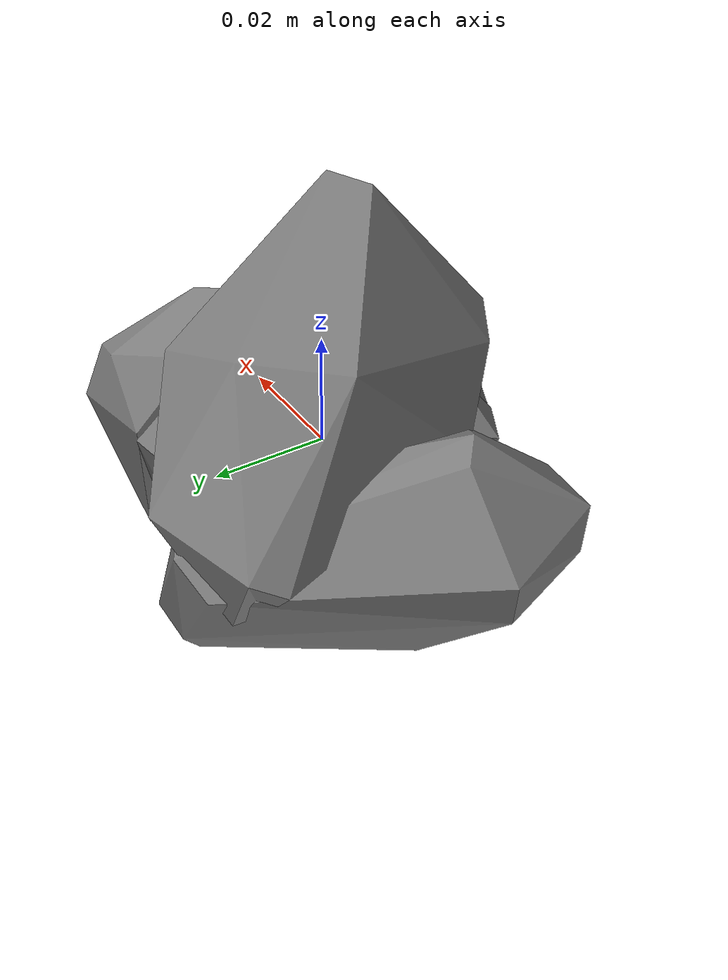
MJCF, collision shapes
<mujoco model="a_marbles">
  <compiler angle="radian" />

  <asset>
    <mesh name="a_marbles_visual_mesh" file="a_marbles/textured.obj" />
    <mesh name="a_marbles_collision_mesh_0" file="a_marbles/textured_coacd_0.stl" />
    <mesh name="a_marbles_collision_mesh_1" file="a_marbles/textured_coacd_1.stl" />
    <mesh name="a_marbles_collision_mesh_2" file="a_marbles/textured_coacd_2.stl" />
    <mesh name="a_marbles_collision_mesh_3" file="a_marbles/textured_coacd_3.stl" />
    <texture name="a_marbles_texture" type="2d" file="a_marbles/texture_map.png" />
    <material name="a_marbles_material" texture="a_marbles_texture" />
  </asset>

  <worldbody>
    <body name="a_marbles" pos="0 0 0" euler="0 0 0">
      <freejoint name="a_marbles_joint" />
      <geom name="a_marbles_visual_geom" type="mesh" mesh="a_marbles_visual_mesh" material="a_marbles_material" pos="0.0027500211748439636 -0.02916533353054031 -0.02215392408992264" euler="0 0 0" contype="0" conaffinity="0" group="0" />
      <geom name="a_marbles_collision_geom_0" type="mesh" mesh="a_marbles_collision_mesh_0" pos="0.0027500211748439636 -0.02916533353054031 -0.02215392408992264" euler="0 0 0" contype="1" conaffinity="1" group="3" />
      <geom name="a_marbles_collision_geom_1" type="mesh" mesh="a_marbles_collision_mesh_1" pos="0.0027500211748439636 -0.02916533353054031 -0.02215392408992264" euler="0 0 0" contype="1" conaffinity="1" group="3" />
      <geom name="a_marbles_collision_geom_2" type="mesh" mesh="a_marbles_collision_mesh_2" pos="0.0027500211748439636 -0.02916533353054031 -0.02215392408992264" euler="0 0 0" contype="1" conaffinity="1" group="3" />
      <geom name="a_marbles_collision_geom_3" type="mesh" mesh="a_marbles_collision_mesh_3" pos="0.0027500211748439636 -0.02916533353054031 -0.02215392408992264" euler="0 0 0" contype="1" conaffinity="1" group="3" />
      <inertial pos="0 0 0" euler="0 0 0" mass="0.001" diaginertia="0.001 0.001 0.001" />
    </body>
  </worldbody>
</mujoco>
